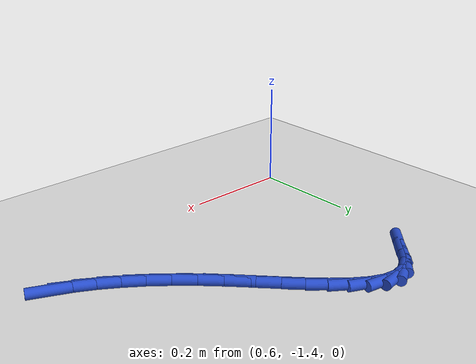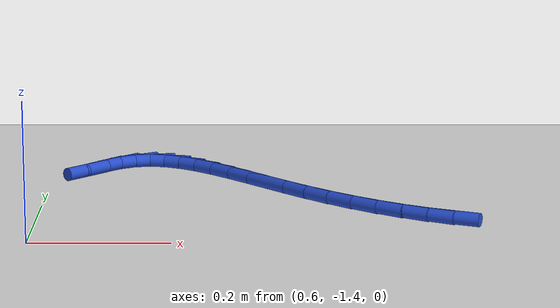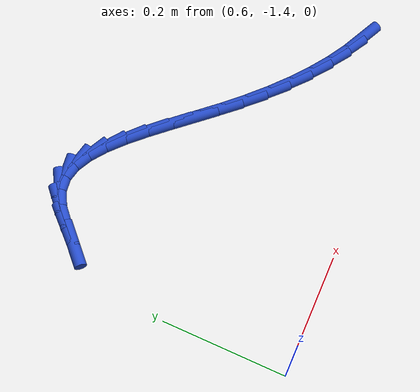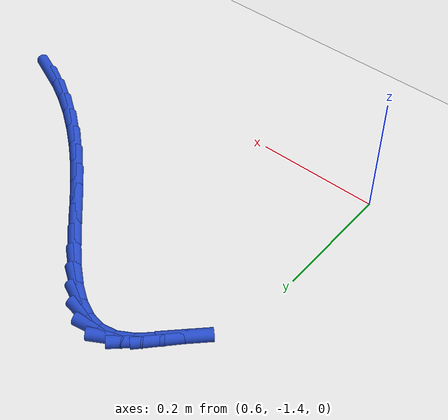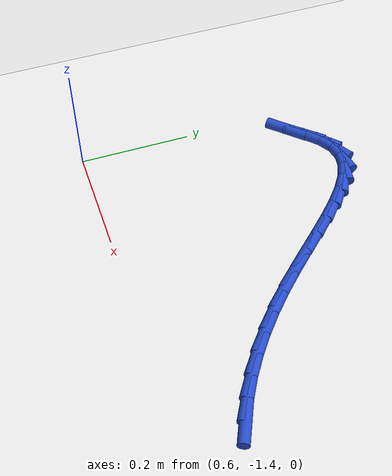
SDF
<sdf version="1.6">
 <world name="default">
  <model name="ground_plane">
   <static>1</static>
   <link name="link">
    <collision name="collision">
     <geometry><plane><normal>0 0 1</normal><size>100 100</size></plane></geometry>
     <surface><friction><ode><mu>100</mu><mu2>50</mu2></ode></friction></surface>
    </collision>
    <visual name="visual">
     <cast_shadows>0</cast_shadows>
     <geometry><plane><normal>0 0 1</normal><size>100 100</size></plane></geometry>
     <material>
      <script><uri>file://media/materials/scripts/gazebo.material</uri><name>Gazebo/WhiteGlow</name></script>
     </material>
    </visual>
   </link>
  </model>
  <model name="line">
   <link name="link_172">
    <pose>1.1983273460662454 -1.300169586379866 0.01 0 1.57 -0.42064211050535977</pose>
    <collision name="collision">
     <geometry><cylinder><radius>0.01</radius><length>0.08</length></cylinder></geometry>
    </collision>
    <visual name="visual">
     <material>
      <script><name>Gazebo/Blue</name><uri>file://media/materials/scripts/gazebo.material</uri></script>
     </material>
     <geometry><cylinder><radius>0.01</radius><length>0.08</length></cylinder></geometry>
    </visual>
   </link>
   <link name="link_173">
    <pose>1.1650044504828116 -1.285262824566844 0.01 0 1.57 -0.5045553812028527</pose>
    <collision name="collision">
     <geometry><cylinder><radius>0.01</radius><length>0.08</length></cylinder></geometry>
    </collision>
    <visual name="visual">
     <material>
      <script><name>Gazebo/Blue</name><uri>file://media/materials/scripts/gazebo.material</uri></script>
     </material>
     <geometry><cylinder><radius>0.01</radius><length>0.08</length></cylinder></geometry>
    </visual>
   </link>
   <link name="link_174">
    <pose>1.1312268641064802 -1.2666097535282563 0.01 0 1.57 -0.5757501467547118</pose>
    <collision name="collision">
     <geometry><cylinder><radius>0.01</radius><length>0.08</length></cylinder></geometry>
    </collision>
    <visual name="visual">
     <material>
      <script><name>Gazebo/Blue</name><uri>file://media/materials/scripts/gazebo.material</uri></script>
     </material>
     <geometry><cylinder><radius>0.01</radius><length>0.08</length></cylinder></geometry>
    </visual>
   </link>
   <link name="link_175">
    <pose>1.0973073584291424 -1.2445922227160535 0.01 0 1.57 -0.6375705813917448</pose>
    <collision name="collision">
     <geometry><cylinder><radius>0.01</radius><length>0.08</length></cylinder></geometry>
    </collision>
    <visual name="visual">
     <material>
      <script><name>Gazebo/Blue</name><uri>file://media/materials/scripts/gazebo.material</uri></script>
     </material>
     <geometry><cylinder><radius>0.01</radius><length>0.08</length></cylinder></geometry>
    </visual>
   </link>
   <link name="link_176">
    <pose>1.0635587049426936 -1.2195920815821872 0.01 0 1.57 -0.6926063235025093</pose>
    <collision name="collision">
     <geometry><cylinder><radius>0.01</radius><length>0.08</length></cylinder></geometry>
    </collision>
    <visual name="visual">
     <material>
      <script><name>Gazebo/Blue</name><uri>file://media/materials/scripts/gazebo.material</uri></script>
     </material>
     <geometry><cylinder><radius>0.01</radius><length>0.08</length></cylinder></geometry>
    </visual>
   </link>
   <link name="link_177">
    <pose>1.0302936751390255 -1.1919911795786093 0.01 0 1.57 -0.7428986835188309</pose>
    <collision name="collision">
     <geometry><cylinder><radius>0.01</radius><length>0.08</length></cylinder></geometry>
    </collision>
    <visual name="visual">
     <material>
      <script><name>Gazebo/Blue</name><uri>file://media/materials/scripts/gazebo.material</uri></script>
     </material>
     <geometry><cylinder><radius>0.01</radius><length>0.08</length></cylinder></geometry>
    </visual>
   </link>
   <link name="link_178">
    <pose>0.997825040381141 -1.1621713664238302 0.01 0 1.57 -0.7869282173786475</pose>
    <collision name="collision">
     <geometry><cylinder><radius>0.01</radius><length>0.08</length></cylinder></geometry>
    </collision>
    <visual name="visual">
     <material>
      <script><name>Gazebo/Blue</name><uri>file://media/materials/scripts/gazebo.material</uri></script>
     </material>
     <geometry><cylinder><radius>0.01</radius><length>0.08</length></cylinder></geometry>
    </visual>
   </link>
   <link name="link_179">
    <pose>0.9664000285682671 -1.130650043245344 0.01 0 1.57 -0.8141089295748685</pose>
    <collision name="collision">
     <geometry><cylinder><radius>0.01</radius><length>0.08</length></cylinder></geometry>
    </collision>
    <visual name="visual">
     <material>
      <script><name>Gazebo/Blue</name><uri>file://media/materials/scripts/gazebo.material</uri></script>
     </material>
     <geometry><cylinder><radius>0.01</radius><length>0.08</length></cylinder></geometry>
    </visual>
   </link>
   <link name="link_180">
    <pose>0.9360134832401725 -1.098466571005539 0.01 0 1.57 -0.822482121920255</pose>
    <collision name="collision">
     <geometry><cylinder><radius>0.01</radius><length>0.08</length></cylinder></geometry>
    </collision>
    <visual name="visual">
     <material>
      <script><name>Gazebo/Blue</name><uri>file://media/materials/scripts/gazebo.material</uri></script>
     </material>
     <geometry><cylinder><radius>0.01</radius><length>0.08</length></cylinder></geometry>
    </visual>
   </link>
   <link name="link_181">
    <pose>0.9065995084991437 -1.0667859267977933 0.01 0 1.57 -0.811119342930198</pose>
    <collision name="collision">
     <geometry><cylinder><radius>0.01</radius><length>0.08</length></cylinder></geometry>
    </collision>
    <visual name="visual">
     <material>
      <script><name>Gazebo/Blue</name><uri>file://media/materials/scripts/gazebo.material</uri></script>
     </material>
     <geometry><cylinder><radius>0.01</radius><length>0.08</length></cylinder></geometry>
    </visual>
   </link>
   <link name="link_182">
    <pose>0.8780922084474682 -1.0367730877154862 0.01 0 1.57 -0.7765288472568462</pose>
    <collision name="collision">
     <geometry><cylinder><radius>0.01</radius><length>0.08</length></cylinder></geometry>
    </collision>
    <visual name="visual">
     <material>
      <script><name>Gazebo/Blue</name><uri>file://media/materials/scripts/gazebo.material</uri></script>
     </material>
     <geometry><cylinder><radius>0.01</radius><length>0.08</length></cylinder></geometry>
    </visual>
   </link>
   <link name="link_183">
    <pose>0.8504256871874336 -1.009593030851996 0.01 0 1.57 -0.7114559404242972</pose>
    <collision name="collision">
     <geometry><cylinder><radius>0.01</radius><length>0.08</length></cylinder></geometry>
    </collision>
    <visual name="visual">
     <material>
      <script><name>Gazebo/Blue</name><uri>file://media/materials/scripts/gazebo.material</uri></script>
     </material>
     <geometry><cylinder><radius>0.01</radius><length>0.08</length></cylinder></geometry>
    </visual>
   </link>
   <link name="link_184">
    <pose>0.8235340488213264 -0.986410733300701 0.01 0 1.57 -0.6027796403022189</pose>
    <collision name="collision">
     <geometry><cylinder><radius>0.01</radius><length>0.08</length></cylinder></geometry>
    </collision>
    <visual name="visual">
     <material>
      <script><name>Gazebo/Blue</name><uri>file://media/materials/scripts/gazebo.material</uri></script>
     </material>
     <geometry><cylinder><radius>0.01</radius><length>0.08</length></cylinder></geometry>
    </visual>
   </link>
   <link name="link_185">
    <pose>0.7973513974514358 -0.9683911721549812 0.01 0 1.57 -0.4293161661142583</pose>
    <collision name="collision">
     <geometry><cylinder><radius>0.01</radius><length>0.08</length></cylinder></geometry>
    </collision>
    <visual name="visual">
     <material>
      <script><name>Gazebo/Blue</name><uri>file://media/materials/scripts/gazebo.material</uri></script>
     </material>
     <geometry><cylinder><radius>0.01</radius><length>0.08</length></cylinder></geometry>
    </visual>
   </link>
   <link name="link_186">
    <pose>0.771811837180048 -0.9566993245082147 0.01 0 1.57 -0.1666591796082441</pose>
    <collision name="collision">
     <geometry><cylinder><radius>0.01</radius><length>0.08</length></cylinder></geometry>
    </collision>
    <visual name="visual">
     <material>
      <script><name>Gazebo/Blue</name><uri>file://media/materials/scripts/gazebo.material</uri></script>
     </material>
     <geometry><cylinder><radius>0.01</radius><length>0.08</length></cylinder></geometry>
    </visual>
   </link>
   <link name="link_187">
    <pose>0.7468494721094511 -0.9525001674537805 0.01 0 1.57 0.18036266215008392</pose>
    <collision name="collision">
     <geometry><cylinder><radius>0.01</radius><length>0.08</length></cylinder></geometry>
    </collision>
    <visual name="visual">
     <material>
      <script><name>Gazebo/Blue</name><uri>file://media/materials/scripts/gazebo.material</uri></script>
     </material>
     <geometry><cylinder><radius>0.01</radius><length>0.08</length></cylinder></geometry>
    </visual>
   </link>
   <link name="link_188">
    <pose>0.7223984063419315 -0.9569586780850576 0.01 0 1.57 0.5346409717090258</pose>
    <collision name="collision">
     <geometry><cylinder><radius>0.01</radius><length>0.08</length></cylinder></geometry>
    </collision>
    <visual name="visual">
     <material>
      <script><name>Gazebo/Blue</name><uri>file://media/materials/scripts/gazebo.material</uri></script>
     </material>
     <geometry><cylinder><radius>0.01</radius><length>0.08</length></cylinder></geometry>
    </visual>
   </link>
   <link name="link_189">
    <pose>0.6983914887048882 -0.9711748129106609 0.01 0 1.57 0.7589639058506279</pose>
    <collision name="collision">
     <geometry><cylinder><radius>0.01</radius><length>0.08</length></cylinder></geometry>
    </collision>
    <visual name="visual">
     <material>
      <script><name>Gazebo/Blue</name><uri>file://media/materials/scripts/gazebo.material</uri></script>
     </material>
     <geometry><cylinder><radius>0.01</radius><length>0.08</length></cylinder></geometry>
    </visual>
   </link>
   <link name="link_190">
    <pose>0.6747111157041153 -0.9936352048717472 0.01 0 1.57 0.8301726124501819</pose>
    <collision name="collision">
     <geometry><cylinder><radius>0.01</radius><length>0.08</length></cylinder></geometry>
    </collision>
    <visual name="visual">
     <material>
      <script><name>Gazebo/Blue</name><uri>file://media/materials/scripts/gazebo.material</uri></script>
     </material>
     <geometry><cylinder><radius>0.01</radius><length>0.08</length></cylinder></geometry>
    </visual>
   </link>
   <link name="link_191">
    <pose>0.6511731715389392 -1.019381290088033 0.01 0 1.57 0.7907469043331856</pose>
    <collision name="collision">
     <geometry><cylinder><radius>0.01</radius><length>0.08</length></cylinder></geometry>
    </collision>
    <visual name="visual">
     <material>
      <script><name>Gazebo/Blue</name><uri>file://media/materials/scripts/gazebo.material</uri></script>
     </material>
     <geometry><cylinder><radius>0.01</radius><length>0.08</length></cylinder></geometry>
    </visual>
   </link>
  </model>
 </world>
</sdf>
